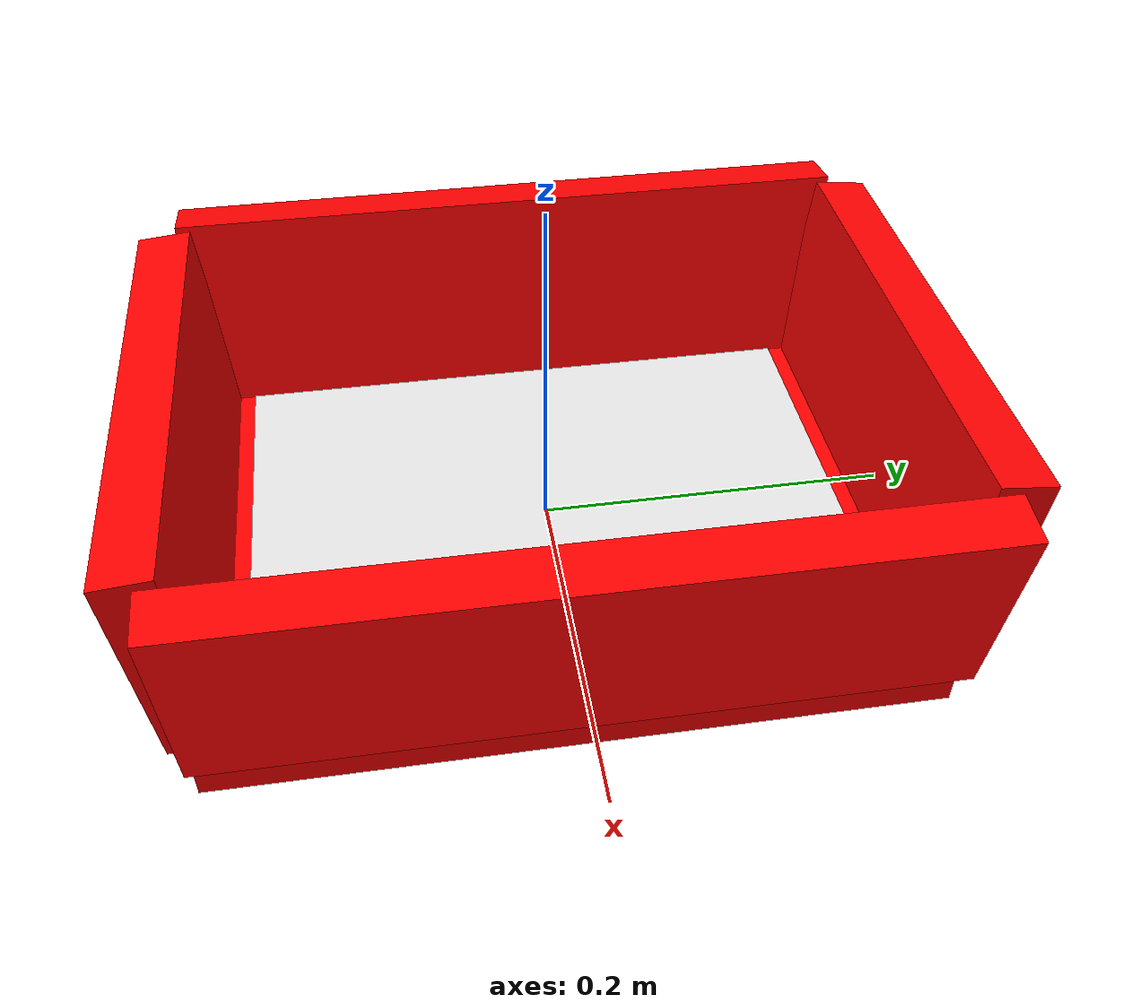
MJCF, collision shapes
<mujoco model="bin">

    <compiler angle="radian" meshdir="./" autolimits="true" />
    <option impratio="10" />
    <default>
        <default class="visual">
            <geom type="mesh" contype="0" conaffinity="0" group="2" />
        </default>
        <default class="collision">
            <geom type="mesh" group="3" />
        </default>
    </default>

    <asset>
        <mesh file="real-bin-simplified.obj" name="tote" scale="1 1 1" />
        <material name="red" rgba="1 0 0 1" />
        <material name="tote_mat" rgba="0.9 0.9 0.9 1" shininess="1" reflectance="0.5" specular="1" />
        <material name="tote_bottom_mat" rgba="0.9 0.9 0.9 1" shininess="1" reflectance="0.0"
            specular="1" />
    </asset>
    <worldbody>
        <body name="bin">
            <geom mesh="tote" class="visual" material="tote_mat" />
            <geom type="box" class="visual" size="0.13 0.17 0.001" pos="0 0 0.003"
                material="tote_bottom_mat" />
            <geom type="box" size="0.14 0.2 0.02" pos="0 0 -0.0165" group="3" material="red" />
            <geom type="box" size="0.14 0.015 0.06" pos="0 0.20 0.06" euler="-0.1 0 0" group="3"
                material="red" />
            <geom type="box" size="0.14 0.015 0.06" pos="0 -0.20 0.06" euler="0.1 0 0" group="3"
                material="red" />
            <geom type="box" size="0.014 0.2 0.06" pos="0.15 0.0 0.06" euler="0 0.15 0" group="3"
                material="red" />
            <geom type="box" size="0.014 0.2 0.06" pos="-0.15 0.0 0.06" euler="0 -0.15 0" group="3"
                material="red" />
        </body>
    </worldbody>
</mujoco>
